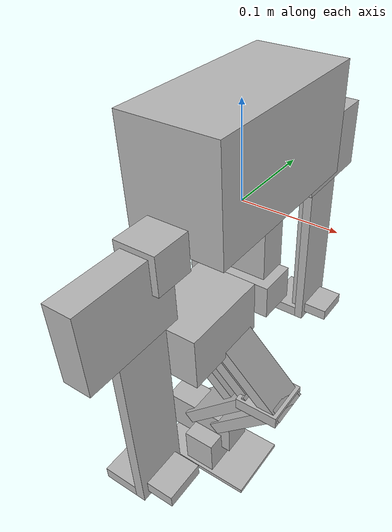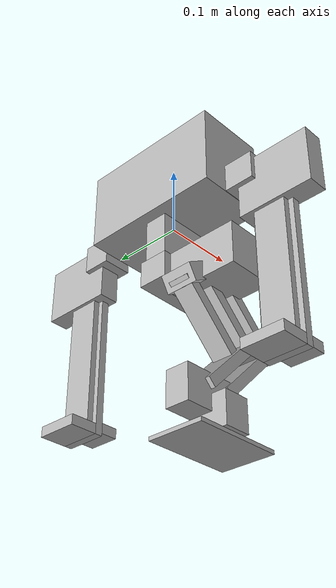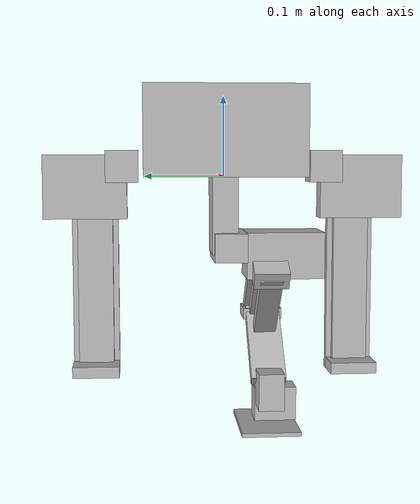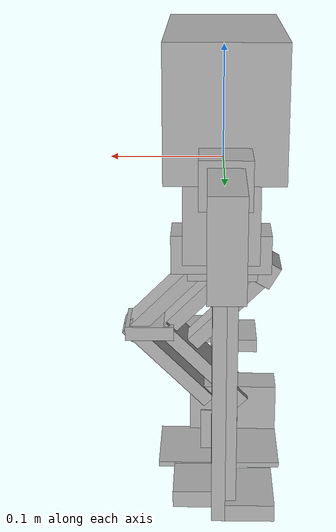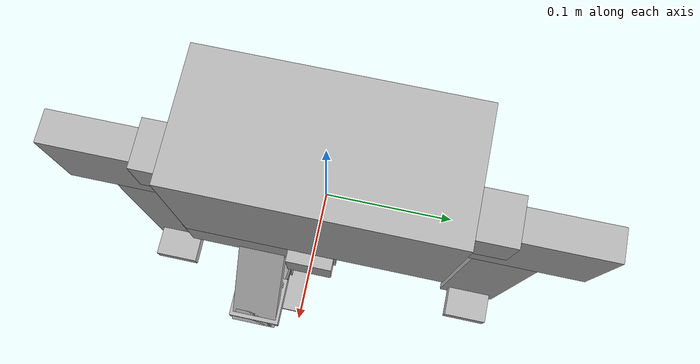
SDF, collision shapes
<sdf version='1.7'>
  <model name='kuroko'>
    <link name='root_link'>
      <inertial>
        <pose>0 0 0.057 0 -0 0</pose>
        <mass>0.991</mass>
        <inertia>
          <ixx>0.00451004</ixx>
          <ixy>0</ixy>
          <ixz>0</ixz>
          <iyy>0.00189909</iyy>
          <iyz>0</iyz>
          <izz>0.00426262</izz>
        </inertia>
      </inertial>
      <collision name='root_link_fixed_joint_lump__chest_collision'>
        <pose>0 0 0.057 0 -0 0</pose>
        <geometry>
          <box>
            <size>0.1 0.204 0.114</size>
          </box>
        </geometry>
        <surface>
          <contact>
            <ode>
              <kp>1e+06</kp>
              <kd>100</kd>
              <max_vel>10</max_vel>
              <min_depth>0.0001</min_depth>
            </ode>
          </contact>
          <friction>
            <ode>
              <mu>0.1</mu>
            </ode>
          </friction>
        </surface>
        <max_contacts>6</max_contacts>
      </collision>
      <visual name='root_link_fixed_joint_lump__chest_visual'>
        <pose>0 0 0 0 -0 0</pose>
        <geometry>
          <mesh>
            <scale>1 1 1</scale>
            <uri>model://kuroko_description/meshes/kuroko/obj/chest.obj</uri>
          </mesh>
        </geometry>
      </visual>
      <velocity_decay>
        <linear>0</linear>
        <angular>0</angular>
      </velocity_decay>
      <self_collide>0</self_collide>
    </link>
    <joint name='shoulder_l_joint' type='revolute'>
      <pose relative_to='root_link'>0 0.108 0.01275 0 -0 0</pose>
      <parent>root_link</parent>
      <child>shoulder_l</child>
      <axis>
        <xyz>0 1 0</xyz>
        <limit>
          <lower>-3.1</lower>
          <upper>3.1</upper>
          <effort>1000</effort>
          <velocity>10</velocity>
        </limit>
        <dynamics>
          <damping>0</damping>
          <friction>0</friction>
          <spring_reference>0</spring_reference>
          <spring_stiffness>0</spring_stiffness>
        </dynamics>
      </axis>
      <physics>
        <ode>
          <implicit_spring_damper>1</implicit_spring_damper>
          <cfm_damping>1</cfm_damping>
          <limit>
            <cfm>0</cfm>
            <erp>0.2</erp>
          </limit>
        </ode>
      </physics>
    </joint>
    <link name='shoulder_l'>
      <pose relative_to='shoulder_l_joint'>0 0 0 0 -0 0</pose>
      <inertial>
        <pose>0 0.0205 0 0 -0 0</pose>
        <mass>0.022</mass>
        <inertia>
          <ixx>1e-05</ixx>
          <ixy>0</ixy>
          <ixz>0</ixz>
          <iyy>1e-05</iyy>
          <iyz>0</iyz>
          <izz>1e-05</izz>
        </inertia>
      </inertial>
      <collision name='shoulder_l_collision'>
        <pose>0 0.0205 0 0 -0 0</pose>
        <geometry>
          <box>
            <size>0.042 0.041 0.04</size>
          </box>
        </geometry>
        <surface>
          <contact>
            <ode>
              <kp>1e+06</kp>
              <kd>100</kd>
              <max_vel>10</max_vel>
              <min_depth>0.0001</min_depth>
            </ode>
          </contact>
          <friction>
            <ode>
              <mu>0</mu>
            </ode>
          </friction>
        </surface>
        <max_contacts>6</max_contacts>
      </collision>
      <visual name='shoulder_l_visual'>
        <pose>0 0 0 0 -0 0</pose>
        <geometry>
          <mesh>
            <scale>1 1 1</scale>
            <uri>model://kuroko_description/meshes/kuroko/obj/shoulder_l.obj</uri>
          </mesh>
        </geometry>
      </visual>
      <velocity_decay>
        <linear>0</linear>
        <angular>0</angular>
      </velocity_decay>
      <self_collide>0</self_collide>
    </link>
    <joint name='arm_l_joint' type='revolute'>
      <pose relative_to='shoulder_l'>0 0.028 0 0 -0 0</pose>
      <parent>shoulder_l</parent>
      <child>arm_l</child>
      <axis>
        <xyz>-1 0 0</xyz>
        <limit>
          <lower>-3.1</lower>
          <upper>3.1</upper>
          <effort>1000</effort>
          <velocity>10</velocity>
        </limit>
        <dynamics>
          <damping>0</damping>
          <friction>0</friction>
          <spring_reference>0</spring_reference>
          <spring_stiffness>0</spring_stiffness>
        </dynamics>
      </axis>
    </joint>
    <link name='arm_l'>
      <pose relative_to='arm_l_joint'>0 0 0 0 -0 0</pose>
      <inertial>
        <pose>0 0.0385 -0.02575 0 -0 0</pose>
        <mass>0.342</mass>
        <inertia>
          <ixx>0.000493627</ixx>
          <ixy>0</ixy>
          <ixz>0</ixz>
          <iyy>0.000205549</iyy>
          <iyz>0</iyz>
          <izz>0.000334376</izz>
        </inertia>
      </inertial>
      <collision name='arm_l_collision'>
        <pose>0 0.0385 -0.02575 0 -0 0</pose>
        <geometry>
          <box>
            <size>0.0285 0.1045 0.08</size>
          </box>
        </geometry>
      </collision>
      <visual name='arm_l_visual'>
        <pose>0 0 0 0 -0 0</pose>
        <geometry>
          <mesh>
            <scale>1 1 1</scale>
            <uri>model://kuroko_description/meshes/kuroko/obj/arm_l.obj</uri>
          </mesh>
        </geometry>
      </visual>
    </link>
    <joint name='scissor_lf_joint' type='revolute'>
      <pose relative_to='arm_l'>0 0.0265 -0.0545 0 -0 0</pose>
      <parent>arm_l</parent>
      <child>scissor_lf</child>
      <axis>
        <xyz>0 1 0</xyz>
        <limit>
          <lower>-3.1</lower>
          <upper>3.1</upper>
          <effort>1000</effort>
          <velocity>10</velocity>
        </limit>
        <dynamics>
          <damping>0</damping>
          <friction>0</friction>
          <spring_reference>0</spring_reference>
          <spring_stiffness>0</spring_stiffness>
        </dynamics>
      </axis>
    </joint>
    <link name='scissor_lf'>
      <pose relative_to='scissor_lf_joint'>0 0 0 0 -0 0</pose>
      <inertial>
        <pose>0.0043 0 -0.104 0 -0 0</pose>
        <mass>0.032</mass>
        <inertia>
          <ixx>0.000124341</ixx>
          <ixy>0</ixy>
          <ixz>0</ixz>
          <iyy>0.000120533</iyy>
          <iyz>0</iyz>
          <izz>1.41333e-05</izz>
        </inertia>
      </inertial>
      <collision name='scissor_lf_collision'>
        <pose>0.0043 0 -0.104 0 -0 0</pose>
        <geometry>
          <box>
            <size>0.01085 0.058 0.208</size>
          </box>
        </geometry>
      </collision>
      <collision name='scissor_lf_collision_1'>
        <pose>-0.0206 0 -0.201 0 -0 0</pose>
        <geometry>
          <box>
            <size>0.039 0.058 0.014</size>
          </box>
        </geometry>
      </collision>
      <visual name='scissor_lf_visual'>
        <pose>0 0 0 0 -0 0</pose>
        <geometry>
          <mesh>
            <scale>1 1 1</scale>
            <uri>model://kuroko_description/meshes/kuroko/obj/scissor_lf.obj</uri>
          </mesh>
        </geometry>
      </visual>
    </link>
    <joint name='scissor_lr_joint' type='revolute'>
      <pose relative_to='arm_l'>0 0.0265 -0.0545 0 -0 0</pose>
      <parent>arm_l</parent>
      <child>scissor_lr</child>
      <axis>
        <xyz>0 -1 0</xyz>
        <limit>
          <lower>-3.1</lower>
          <upper>3.1</upper>
          <effort>1000</effort>
          <velocity>10</velocity>
        </limit>
        <dynamics>
          <damping>0</damping>
          <friction>0</friction>
          <spring_reference>0</spring_reference>
          <spring_stiffness>0</spring_stiffness>
        </dynamics>
      </axis>
    </joint>
    <link name='scissor_lr'>
      <pose relative_to='scissor_lr_joint'>0 0 0 0 -0 0</pose>
      <inertial>
        <pose>-0.0043 0 -0.1 0 -0 0</pose>
        <mass>0.031</mass>
        <inertia>
          <ixx>0.000108335</ixx>
          <ixy>0</ixy>
          <ixz>0</ixz>
          <iyy>0.000108335</iyy>
          <iyz>0</iyz>
          <izz>1.00027e-05</izz>
        </inertia>
      </inertial>
      <collision name='scissor_lr_collision'>
        <pose>-0.0043 0 -0.1 0 -0 0</pose>
        <geometry>
          <box>
            <size>0.01085 0.044 0.2</size>
          </box>
        </geometry>
      </collision>
      <collision name='scissor_lr_collision_1'>
        <pose>0.0206 0 -0.193 0 -0 0</pose>
        <geometry>
          <box>
            <size>0.039 0.044 0.014</size>
          </box>
        </geometry>
      </collision>
      <visual name='scissor_lr_visual'>
        <pose>0 0 0 0 -0 0</pose>
        <geometry>
          <mesh>
            <scale>1 1 1</scale>
            <uri>model://kuroko_description/meshes/kuroko/obj/scissor_lr.obj</uri>
          </mesh>
        </geometry>
      </visual>
    </link>
    <joint name='shoulder_r_joint' type='revolute'>
      <pose relative_to='root_link'>0 -0.108 0.01275 0 -0 0</pose>
      <parent>root_link</parent>
      <child>shoulder_r</child>
      <axis>
        <xyz>0 -1 0</xyz>
        <limit>
          <lower>-3.1</lower>
          <upper>3.1</upper>
          <effort>1000</effort>
          <velocity>10</velocity>
        </limit>
        <dynamics>
          <damping>0</damping>
          <friction>0</friction>
          <spring_reference>0</spring_reference>
          <spring_stiffness>0</spring_stiffness>
        </dynamics>
      </axis>
      <physics>
        <ode>
          <implicit_spring_damper>1</implicit_spring_damper>
          <cfm_damping>1</cfm_damping>
          <limit>
            <cfm>0</cfm>
            <erp>0.2</erp>
          </limit>
        </ode>
      </physics>
    </joint>
    <link name='shoulder_r'>
      <pose relative_to='shoulder_r_joint'>0 0 0 0 -0 0</pose>
      <inertial>
        <pose>0 -0.0205 0 0 -0 0</pose>
        <mass>0.022</mass>
        <inertia>
          <ixx>1e-05</ixx>
          <ixy>0</ixy>
          <ixz>0</ixz>
          <iyy>1e-05</iyy>
          <iyz>0</iyz>
          <izz>1e-05</izz>
        </inertia>
      </inertial>
      <collision name='shoulder_r_collision'>
        <pose>0 -0.0205 0 0 -0 0</pose>
        <geometry>
          <box>
            <size>0.042 0.041 0.04</size>
          </box>
        </geometry>
        <surface>
          <contact>
            <ode>
              <kp>1e+06</kp>
              <kd>100</kd>
              <max_vel>10</max_vel>
              <min_depth>0.0001</min_depth>
            </ode>
          </contact>
          <friction>
            <ode>
              <mu>0</mu>
            </ode>
          </friction>
        </surface>
        <max_contacts>6</max_contacts>
      </collision>
      <visual name='shoulder_r_visual'>
        <pose>0 0 0 0 -0 0</pose>
        <geometry>
          <mesh>
            <scale>1 1 1</scale>
            <uri>model://kuroko_description/meshes/kuroko/obj/shoulder_r.obj</uri>
          </mesh>
        </geometry>
      </visual>
      <velocity_decay>
        <linear>0</linear>
        <angular>0</angular>
      </velocity_decay>
      <self_collide>0</self_collide>
    </link>
    <joint name='arm_r_joint' type='revolute'>
      <pose relative_to='shoulder_r'>0 -0.028 0 0 -0 0</pose>
      <parent>shoulder_r</parent>
      <child>arm_r</child>
      <axis>
        <xyz>-1 0 0</xyz>
        <limit>
          <lower>-3.1</lower>
          <upper>3.1</upper>
          <effort>1000</effort>
          <velocity>10</velocity>
        </limit>
        <dynamics>
          <damping>0</damping>
          <friction>0</friction>
          <spring_reference>0</spring_reference>
          <spring_stiffness>0</spring_stiffness>
        </dynamics>
      </axis>
    </joint>
    <link name='arm_r'>
      <pose relative_to='arm_r_joint'>0 0 0 0 -0 0</pose>
      <inertial>
        <pose>0 -0.0385 -0.02575 0 -0 0</pose>
        <mass>0.342</mass>
        <inertia>
          <ixx>0.000493627</ixx>
          <ixy>0</ixy>
          <ixz>0</ixz>
          <iyy>0.000205549</iyy>
          <iyz>0</iyz>
          <izz>0.000334376</izz>
        </inertia>
      </inertial>
      <collision name='arm_r_collision'>
        <pose>0 -0.0385 -0.02575 0 -0 0</pose>
        <geometry>
          <box>
            <size>0.0285 0.1045 0.08</size>
          </box>
        </geometry>
      </collision>
      <visual name='arm_r_visual'>
        <pose>0 0 0 0 -0 0</pose>
        <geometry>
          <mesh>
            <scale>1 1 1</scale>
            <uri>model://kuroko_description/meshes/kuroko/obj/arm_r.obj</uri>
          </mesh>
        </geometry>
      </visual>
    </link>
    <joint name='scissor_rf_joint' type='revolute'>
      <pose relative_to='arm_r'>0 -0.0265 -0.0545 0 -0 0</pose>
      <parent>arm_r</parent>
      <child>scissor_rf</child>
      <axis>
        <xyz>0 -1 0</xyz>
        <limit>
          <lower>-3.1</lower>
          <upper>3.1</upper>
          <effort>1000</effort>
          <velocity>10</velocity>
        </limit>
        <dynamics>
          <damping>0</damping>
          <friction>0</friction>
          <spring_reference>0</spring_reference>
          <spring_stiffness>0</spring_stiffness>
        </dynamics>
      </axis>
    </joint>
    <link name='scissor_rf'>
      <pose relative_to='scissor_rf_joint'>0 0 0 0 -0 0</pose>
      <inertial>
        <pose>0.0043 0 -0.104 0 -0 0</pose>
        <mass>0.032</mass>
        <inertia>
          <ixx>0.000124341</ixx>
          <ixy>0</ixy>
          <ixz>0</ixz>
          <iyy>0.000120533</iyy>
          <iyz>0</iyz>
          <izz>1.41333e-05</izz>
        </inertia>
      </inertial>
      <collision name='scissor_rf_collision'>
        <pose>0.0043 0 -0.104 0 -0 0</pose>
        <geometry>
          <box>
            <size>0.01085 0.058 0.208</size>
          </box>
        </geometry>
      </collision>
      <collision name='scissor_rf_collision_1'>
        <pose>-0.0206 0 -0.201 0 -0 0</pose>
        <geometry>
          <box>
            <size>0.039 0.058 0.014</size>
          </box>
        </geometry>
      </collision>
      <visual name='scissor_rf_visual'>
        <pose>0 0 0 0 -0 0</pose>
        <geometry>
          <mesh>
            <scale>1 1 1</scale>
            <uri>model://kuroko_description/meshes/kuroko/obj/scissor_rf.obj</uri>
          </mesh>
        </geometry>
      </visual>
    </link>
    <joint name='scissor_rr_joint' type='revolute'>
      <pose relative_to='arm_r'>0 -0.0265 -0.0545 0 -0 0</pose>
      <parent>arm_r</parent>
      <child>scissor_rr</child>
      <axis>
        <xyz>0 1 0</xyz>
        <limit>
          <lower>-3.1</lower>
          <upper>3.1</upper>
          <effort>1000</effort>
          <velocity>10</velocity>
        </limit>
        <dynamics>
          <damping>0</damping>
          <friction>0</friction>
          <spring_reference>0</spring_reference>
          <spring_stiffness>0</spring_stiffness>
        </dynamics>
      </axis>
    </joint>
    <link name='scissor_rr'>
      <pose relative_to='scissor_rr_joint'>0 0 0 0 -0 0</pose>
      <inertial>
        <pose>-0.0043 0 -0.1 0 -0 0</pose>
        <mass>0.031</mass>
        <inertia>
          <ixx>0.000108335</ixx>
          <ixy>0</ixy>
          <ixz>0</ixz>
          <iyy>0.000108335</iyy>
          <iyz>0</iyz>
          <izz>1.00027e-05</izz>
        </inertia>
      </inertial>
      <collision name='scissor_rr_collision'>
        <pose>-0.0043 0 -0.1 0 -0 0</pose>
        <geometry>
          <box>
            <size>0.01085 0.044 0.2</size>
          </box>
        </geometry>
      </collision>
      <collision name='scissor_rr_collision_1'>
        <pose>0.0206 0 -0.193 0 -0 0</pose>
        <geometry>
          <box>
            <size>0.039 0.044 0.014</size>
          </box>
        </geometry>
      </collision>
      <visual name='scissor_rr_visual'>
        <pose>0 0 0 0 -0 0</pose>
        <geometry>
          <mesh>
            <scale>1 1 1</scale>
            <uri>model://kuroko_description/meshes/kuroko/obj/scissor_rr.obj</uri>
          </mesh>
        </geometry>
      </visual>
    </link>
    <joint name='waist_joint' type='revolute'>
      <pose relative_to='root_link'>0 0 0 0 -0 0</pose>
      <parent>root_link</parent>
      <child>waist</child>
      <axis>
        <xyz>0 0 -1</xyz>
        <limit>
          <lower>-3.1</lower>
          <upper>3.1</upper>
          <effort>1000</effort>
          <velocity>10</velocity>
        </limit>
        <dynamics>
          <damping>0</damping>
          <friction>0</friction>
          <spring_reference>0</spring_reference>
          <spring_stiffness>0</spring_stiffness>
        </dynamics>
      </axis>
      <physics>
        <ode>
          <implicit_spring_damper>1</implicit_spring_damper>
          <cfm_damping>1</cfm_damping>
          <limit>
            <cfm>0</cfm>
            <erp>0.2</erp>
          </limit>
        </ode>
      </physics>
    </joint>
    <link name='waist'>
      <pose relative_to='waist_joint'>0 0 0 0 -0 0</pose>
      <inertial>
        <pose>0.00125 0 -0.04875 0 -0 0</pose>
        <mass>0.337</mass>
        <inertia>
          <ixx>0.00029663</ixx>
          <ixy>0</ixy>
          <ixz>0</ixz>
          <iyy>0.000406548</iyy>
          <iyz>0</iyz>
          <izz>0.000169244</izz>
        </inertia>
      </inertial>
      <collision name='waist_collision'>
        <pose>0.00125 0 -0.04875 0 -0 0</pose>
        <geometry>
          <box>
            <size>0.0705 0.0325 0.0975</size>
          </box>
        </geometry>
        <surface>
          <contact>
            <ode>
              <kp>1e+06</kp>
              <kd>100</kd>
              <max_vel>10</max_vel>
              <min_depth>0.0001</min_depth>
            </ode>
          </contact>
          <friction>
            <ode>
              <mu>0.1</mu>
            </ode>
          </friction>
        </surface>
        <max_contacts>6</max_contacts>
      </collision>
      <visual name='waist_visual'>
        <pose>0 0 0 0 -0 0</pose>
        <geometry>
          <mesh>
            <scale>1 1 1</scale>
            <uri>model://kuroko_description/meshes/kuroko/obj/waist.obj</uri>
          </mesh>
        </geometry>
      </visual>
      <velocity_decay>
        <linear>0</linear>
        <angular>0</angular>
      </velocity_decay>
      <self_collide>0</self_collide>
    </link>
    <joint name='crotch_r_joint' type='revolute'>
      <pose relative_to='waist'>0.00125 0 -0.08425 0 -0 0</pose>
      <parent>waist</parent>
      <child>crotch_r</child>
      <axis>
        <xyz>1 0 0</xyz>
        <limit>
          <lower>-3.1</lower>
          <upper>3.1</upper>
          <effort>1000</effort>
          <velocity>10</velocity>
        </limit>
        <dynamics>
          <damping>0</damping>
          <friction>0</friction>
          <spring_reference>0</spring_reference>
          <spring_stiffness>0</spring_stiffness>
        </dynamics>
      </axis>
    </joint>
    <link name='crotch_r'>
      <pose relative_to='crotch_r_joint'>0 0 0 0 -0 0</pose>
      <inertial>
        <pose>0 -0.0065 -0.004125 0 -0 0</pose>
        <mass>0.026</mass>
        <inertia>
          <ixx>1e-05</ixx>
          <ixy>0</ixy>
          <ixz>0</ixz>
          <iyy>2.11858e-05</iyy>
          <iyz>0</iyz>
          <izz>2.19808e-05</izz>
        </inertia>
      </inertial>
      <collision name='crotch_r_collision'>
        <pose>0 -0.0065 -0.004125 0 -0 0</pose>
        <geometry>
          <box>
            <size>0.092 0.041 0.03625</size>
          </box>
        </geometry>
      </collision>
      <visual name='crotch_r_visual'>
        <pose>0 0 0 0 -0 0</pose>
        <geometry>
          <mesh>
            <scale>1 1 1</scale>
            <uri>model://kuroko_description/meshes/kuroko/obj/crotch_r.obj</uri>
          </mesh>
        </geometry>
      </visual>
    </link>
    <joint name='thigh_r_01_joint' type='revolute'>
      <pose relative_to='crotch_r'>0 -0.027 0 0 -0 0</pose>
      <parent>crotch_r</parent>
      <child>thigh_r_01</child>
      <axis>
        <xyz>0 -1 0</xyz>
        <limit>
          <lower>-3.1</lower>
          <upper>3.1</upper>
          <effort>1000</effort>
          <velocity>10</velocity>
        </limit>
        <dynamics>
          <damping>0</damping>
          <friction>0</friction>
          <spring_reference>0</spring_reference>
          <spring_stiffness>0</spring_stiffness>
        </dynamics>
      </axis>
    </joint>
    <link name='thigh_r_01'>
      <pose relative_to='thigh_r_01_joint'>0 0 0 0 -0 0</pose>
      <inertial>
        <pose>-0.00175 -0.049 -0.015 0 -0 0</pose>
        <mass>0.478</mass>
        <inertia>
          <ixx>0.000518879</ixx>
          <ixy>0</ixy>
          <ixz>0</ixz>
          <iyy>0.000315131</iyy>
          <iyz>0</iyz>
          <izz>0.000561371</izz>
        </inertia>
      </inertial>
      <collision name='thigh_r_01_collision'>
        <pose>-0.00175 -0.049 -0.015 0 -0 0</pose>
        <geometry>
          <box>
            <size>0.067 0.098 0.0585</size>
          </box>
        </geometry>
      </collision>
      <visual name='thigh_r_01_visual'>
        <pose>0 0 0 0 -0 0</pose>
        <geometry>
          <mesh>
            <scale>1 1 1</scale>
            <uri>model://kuroko_description/meshes/kuroko/obj/thigh_r_01.obj</uri>
          </mesh>
        </geometry>
      </visual>
    </link>
    <joint name='thigh_r_02_joint' type='revolute'>
      <pose relative_to='thigh_r_01'>0.015 -0.02925 -0.0305 0 -0.785398 0</pose>
      <parent>thigh_r_01</parent>
      <child>thigh_r_02</child>
      <axis>
        <xyz>0 1 0</xyz>
        <limit>
          <lower>-3.1</lower>
          <upper>3.1</upper>
          <effort>1000</effort>
          <velocity>10</velocity>
        </limit>
        <dynamics>
          <damping>0</damping>
          <friction>0</friction>
          <spring_reference>0</spring_reference>
          <spring_stiffness>0</spring_stiffness>
        </dynamics>
      </axis>
    </joint>
    <link name='thigh_r_02'>
      <pose relative_to='thigh_r_02_joint'>0 0 0 0 -0 0</pose>
      <inertial>
        <pose>0 0 -0.05 0 -0 0</pose>
        <mass>0.012</mass>
        <inertia>
          <ixx>1.49763e-05</ixx>
          <ixy>0</ixy>
          <ixz>0</ixz>
          <iyy>1.3192e-05</iyy>
          <iyz>0</iyz>
          <izz>1e-05</izz>
        </inertia>
      </inertial>
      <collision name='thigh_r_02_collision'>
        <pose>0 0 -0.05 0 -0 0</pose>
        <geometry>
          <box>
            <size>0.014 0.0445 0.114</size>
          </box>
        </geometry>
      </collision>
      <visual name='thigh_r_02_visual'>
        <pose>0 0 0 0 -0 0</pose>
        <geometry>
          <mesh>
            <scale>1 1 1</scale>
            <uri>model://kuroko_description/meshes/kuroko/obj/thigh_r_02.obj</uri>
          </mesh>
        </geometry>
      </visual>
    </link>
    <joint name='knee_r_joint' type='revolute'>
      <pose relative_to='thigh_r_02'>0 0 -0.1 0 0.785398 0</pose>
      <parent>thigh_r_02</parent>
      <child>knee_r</child>
      <axis>
        <xyz>0 1 0</xyz>
        <limit>
          <lower>-3.1</lower>
          <upper>3.1</upper>
          <effort>1000</effort>
          <velocity>10</velocity>
        </limit>
        <dynamics>
          <damping>0</damping>
          <friction>0</friction>
          <spring_reference>0</spring_reference>
          <spring_stiffness>0</spring_stiffness>
        </dynamics>
      </axis>
    </joint>
    <link name='knee_r'>
      <pose relative_to='knee_r_joint'>0 0 0 0 -0 0</pose>
      <inertial>
        <pose>-0.01675 0 0 0 -0 0</pose>
        <mass>0.007</mass>
        <inertia>
          <ixx>1e-05</ixx>
          <ixy>0</ixy>
          <ixz>0</ixz>
          <iyy>1e-05</iyy>
          <iyz>0</iyz>
          <izz>1e-05</izz>
        </inertia>
      </inertial>
      <collision name='knee_r_collision'>
        <pose>-0.01675 0 0 0 -0 0</pose>
        <geometry>
          <box>
            <size>0.0475 0.0505 0.014</size>
          </box>
        </geometry>
      </collision>
      <visual name='knee_r_visual'>
        <pose>0 0 0 0 -0 0</pose>
        <geometry>
          <mesh>
            <scale>1 1 1</scale>
            <uri>model://kuroko_description/meshes/kuroko/obj/knee_r.obj</uri>
          </mesh>
        </geometry>
      </visual>
    </link>
    <joint name='leg_r_01_joint' type='revolute'>
      <pose relative_to='knee_r'>0 0 0 0 0.785398 0</pose>
      <parent>knee_r</parent>
      <child>leg_r_01</child>
      <axis>
        <xyz>0 1 0</xyz>
        <limit>
          <lower>-3.1</lower>
          <upper>3.1</upper>
          <effort>1000</effort>
          <velocity>10</velocity>
        </limit>
        <dynamics>
          <damping>0</damping>
          <friction>0</friction>
          <spring_reference>0</spring_reference>
          <spring_stiffness>0</spring_stiffness>
        </dynamics>
      </axis>
    </joint>
    <link name='leg_r_01'>
      <pose relative_to='leg_r_01_joint'>0 0 0 0 -0 0</pose>
      <inertial>
        <pose>0 0 -0.05 0 -0 0</pose>
        <mass>0.013</mass>
        <inertia>
          <ixx>1.56848e-05</ixx>
          <ixy>0</ixy>
          <ixz>0</ixz>
          <iyy>1.42913e-05</iyy>
          <iyz>0</iyz>
          <izz>1e-05</izz>
        </inertia>
      </inertial>
      <collision name='leg_r_01_collision'>
        <pose>0 0 -0.05 0 -0 0</pose>
        <geometry>
          <box>
            <size>0.014 0.0385 0.114</size>
          </box>
        </geometry>
      </collision>
      <visual name='leg_r_01_visual'>
        <pose>0 0 0 0 -0 0</pose>
        <geometry>
          <mesh>
            <scale>1 1 1</scale>
            <uri>model://kuroko_description/meshes/kuroko/obj/leg_r_01.obj</uri>
          </mesh>
        </geometry>
      </visual>
    </link>
    <joint name='ankle_r_01_joint' type='revolute'>
      <pose relative_to='leg_r_01'>0 0 -0.1 0 -0.785398 0</pose>
      <parent>leg_r_01</parent>
      <child>ankle_r_01</child>
      <axis>
        <xyz>0 1 0</xyz>
        <limit>
          <lower>-3.1</lower>
          <upper>3.1</upper>
          <effort>1000</effort>
          <velocity>10</velocity>
        </limit>
        <dynamics>
          <damping>0</damping>
          <friction>0</friction>
          <spring_reference>0</spring_reference>
          <spring_stiffness>0</spring_stiffness>
        </dynamics>
      </axis>
    </joint>
    <link name='ankle_r_01'>
      <pose relative_to='ankle_r_01_joint'>0 0 0 0 -0 0</pose>
      <inertial>
        <pose>-0.0285 0 -0.013 0 -0 0</pose>
        <mass>0.104</mass>
        <inertia>
          <ixx>2.78937e-05</ixx>
          <ixy>0</ixy>
          <ixz>0</ixz>
          <iyy>8.2095e-05</iyy>
          <iyz>0</iyz>
          <izz>7.25097e-05</izz>
        </inertia>
      </inertial>
      <collision name='ankle_r_01_collision'>
        <pose>-0.0285 0 -0.013 0 -0 0</pose>
        <geometry>
          <box>
            <size>0.0855 0.0325 0.0465</size>
          </box>
        </geometry>
      </collision>
      <visual name='ankle_r_01_visual'>
        <pose>0 0 0 0 -0 0</pose>
        <geometry>
          <mesh>
            <scale>1 1 1</scale>
            <uri>model://kuroko_description/meshes/kuroko/obj/ankle_r_01.obj</uri>
          </mesh>
        </geometry>
      </visual>
    </link>
    <joint name='toe_r_01_joint' type='revolute'>
      <pose relative_to='ankle_r_01'>-0.015 0 -0.025 0 -0 0</pose>
      <parent>ankle_r_01</parent>
      <child>toe_r_01</child>
      <axis>
        <xyz>1 0 0</xyz>
        <limit>
          <lower>-3.1</lower>
          <upper>3.1</upper>
          <effort>1000</effort>
          <velocity>10</velocity>
        </limit>
        <dynamics>
          <damping>0</damping>
          <friction>0</friction>
          <spring_reference>0</spring_reference>
          <spring_stiffness>0</spring_stiffness>
        </dynamics>
      </axis>
    </joint>
    <link name='toe_r_01'>
      <pose relative_to='toe_r_01_joint'>0 0 0 0 -0 0</pose>
      <inertial>
        <pose>0 -0.009375 -0.01175 0 -0 0</pose>
        <mass>0.136</mass>
        <inertia>
          <ixx>5.3698e-05</ixx>
          <ixy>0</ixy>
          <ixz>0</ixz>
          <iyy>3.60542e-05</iyy>
          <iyz>0</iyz>
          <izz>4.78415e-05</izz>
        </inertia>
      </inertial>
      <collision name='toe_r_01_collision'>
        <pose>0 -0.009375 -0.01175 0 -0 0</pose>
        <geometry>
          <box>
            <size>0.0365 0.05375 0.043</size>
          </box>
        </geometry>
      </collision>
      <visual name='toe_r_01_visual'>
        <pose>0 0 0 0 -0 0</pose>
        <geometry>
          <mesh>
            <scale>1 1 1</scale>
            <uri>model://kuroko_description/meshes/kuroko/obj/toe_r_01.obj</uri>
          </mesh>
        </geometry>
      </visual>
    </link>
    <joint name='toe_r_02_joint' type='revolute'>
      <pose relative_to='toe_r_01'>0 0 -0.03825 0 -0 0</pose>
      <parent>toe_r_01</parent>
      <child>toe_r_02</child>
      <axis>
        <xyz>0 0 -1</xyz>
        <limit>
          <lower>-3.1</lower>
          <upper>3.1</upper>
          <effort>1000</effort>
          <velocity>10</velocity>
        </limit>
        <dynamics>
          <damping>0</damping>
          <friction>0</friction>
          <spring_reference>0</spring_reference>
          <spring_stiffness>0</spring_stiffness>
        </dynamics>
      </axis>
    </joint>
    <link name='toe_r_02'>
      <pose relative_to='toe_r_02_joint'>0 0 0 0 -0 0</pose>
      <inertial>
        <pose>0 0 -0.0025 0 -0 0</pose>
        <mass>0.043</mass>
        <inertia>
          <ixx>2.02458e-05</ixx>
          <ixy>0</ixy>
          <ixz>0</ixz>
          <iyy>5.16896e-05</iyy>
          <iyz>0</iyz>
          <izz>7.17562e-05</izz>
        </inertia>
      </inertial>
      <collision name='toe_r_02_collision'>
        <pose>0 0 -0.0025 0 -0 0</pose>
        <geometry>
          <box>
            <size>0.12 0.075 0.005</size>
          </box>
        </geometry>
      </collision>
      <visual name='toe_r_02_visual'>
        <pose>0 0 0 0 -0 0</pose>
        <geometry>
          <mesh>
            <scale>1 1 1</scale>
            <uri>model://kuroko_description/meshes/kuroko/obj/toe_r_02.obj</uri>
          </mesh>
        </geometry>
      </visual>
    </link>
    <joint name='leg_r_02_joint' type='revolute'>
      <pose relative_to='knee_r'>-0.0335 0 0 0 0.785398 0</pose>
      <parent>knee_r</parent>
      <child>leg_r_02</child>
      <axis>
        <xyz>0 1 0</xyz>
        <limit>
          <lower>-3.1</lower>
          <upper>3.1</upper>
          <effort>1000</effort>
          <velocity>10</velocity>
        </limit>
        <dynamics>
          <damping>0</damping>
          <friction>0</friction>
          <spring_reference>0</spring_reference>
          <spring_stiffness>0</spring_stiffness>
        </dynamics>
      </axis>
    </joint>
    <link name='leg_r_02'>
      <pose relative_to='leg_r_02_joint'>0 0 0 0 -0 0</pose>
      <inertial>
        <pose>0 0 -0.05 0 -0 0</pose>
        <mass>0.016</mass>
        <inertia>
          <ixx>1.99683e-05</ixx>
          <ixy>0</ixy>
          <ixz>0</ixz>
          <iyy>1.75893e-05</iyy>
          <iyz>0</iyz>
          <izz>1e-05</izz>
        </inertia>
      </inertial>
      <collision name='leg_r_02_collision'>
        <pose>0 0 -0.05 0 -0 0</pose>
        <geometry>
          <box>
            <size>0.014 0.0445 0.114</size>
          </box>
        </geometry>
      </collision>
      <visual name='leg_r_02_visual'>
        <pose>0 0 0 0 -0 0</pose>
        <geometry>
          <mesh>
            <scale>1 1 1</scale>
            <uri>model://kuroko_description/meshes/kuroko/obj/leg_r_02.obj</uri>
          </mesh>
        </geometry>
      </visual>
    </link>
    <joint name='thigh_r_03_joint' type='revolute'>
      <pose relative_to='thigh_r_01'>-0.0185 -0.02925 -0.0305 0 1.0472 0</pose>
      <parent>thigh_r_01</parent>
      <child>thigh_r_03</child>
      <axis>
        <xyz>0 1 0</xyz>
        <limit>
          <lower>-3.1</lower>
          <upper>3.1</upper>
          <effort>1000</effort>
          <velocity>10</velocity>
        </limit>
        <dynamics>
          <damping>0</damping>
          <friction>0</friction>
          <spring_reference>0</spring_reference>
          <spring_stiffness>0</spring_stiffness>
        </dynamics>
      </axis>
    </joint>
    <link name='thigh_r_03'>
      <pose relative_to='thigh_r_03_joint'>0 0 0 0 -0 0</pose>
      <inertial>
        <pose>-0.004745 0 -0.015 0 -0 0</pose>
        <mass>0.008</mass>
        <inertia>
          <ixx>1e-05</ixx>
          <ixy>0</ixy>
          <ixz>0</ixz>
          <iyy>1e-05</iyy>
          <iyz>0</iyz>
          <izz>1e-05</izz>
        </inertia>
      </inertial>
      <collision name='thigh_r_03_collision'>
        <pose>-0.004745 0 -0.015 0 -0 0</pose>
        <geometry>
          <box>
            <size>0.02349 0.0445 0.044</size>
          </box>
        </geometry>
      </collision>
      <visual name='thigh_r_03_visual'>
        <pose>0 0 0 0 -0 0</pose>
        <geometry>
          <mesh>
            <scale>1 1 1</scale>
            <uri>model://kuroko_description/meshes/kuroko/obj/thigh_r_03.obj</uri>
          </mesh>
        </geometry>
      </visual>
    </link>
    <joint name='thigh_r_05_mimic1' type='revolute'>
      <pose relative_to='thigh_r_03'>0 0 -0.03 3.14159 -1.30899 3.14159</pose>
      <parent>thigh_r_03</parent>
      <child>thigh_r_05</child>
      <axis>
        <xyz>0 1 0</xyz>
        <limit>
          <lower>-3.1</lower>
          <upper>3.1</upper>
          <effort>1000</effort>
          <velocity>10</velocity>
        </limit>
        <dynamics>
          <damping>0</damping>
          <friction>0</friction>
          <spring_reference>0</spring_reference>
          <spring_stiffness>0</spring_stiffness>
        </dynamics>
      </axis>
    </joint>
    <link name='thigh_r_05'>
      <pose relative_to='thigh_r_05_mimic1'>0 0 0 0 -0 0</pose>
      <inertial>
        <pose>0 0 -0.05 0 -0 0</pose>
        <mass>0.011</mass>
        <inertia>
          <ixx>1.26576e-05</ixx>
          <ixy>0</ixy>
          <ixz>0</ixz>
          <iyy>1.20927e-05</iyy>
          <iyz>0</iyz>
          <izz>1e-05</izz>
        </inertia>
      </inertial>
      <collision name='thigh_r_05_collision'>
        <pose>0 0 -0.05 0 -0 0</pose>
        <geometry>
          <box>
            <size>0.014 0.0285 0.114</size>
          </box>
        </geometry>
      </collision>
      <visual name='thigh_r_05_visual'>
        <pose>0 0 0 0 -0 0</pose>
        <geometry>
          <mesh>
            <scale>1 1 1</scale>
            <uri>model://kuroko_description/meshes/kuroko/obj/thigh_r_05.obj</uri>
          </mesh>
        </geometry>
      </visual>
    </link>
    <joint name='thigh_r_04_joint' type='revolute'>
      <pose relative_to='thigh_r_01'>-0.0185 -0.02925 -0.0305 0 -0.785398 0</pose>
      <parent>thigh_r_01</parent>
      <child>thigh_r_04</child>
      <axis>
        <xyz>0 1 0</xyz>
        <limit>
          <lower>-3.1</lower>
          <upper>3.1</upper>
          <effort>1000</effort>
          <velocity>10</velocity>
        </limit>
        <dynamics>
          <damping>0</damping>
          <friction>0</friction>
          <spring_reference>0</spring_reference>
          <spring_stiffness>0</spring_stiffness>
        </dynamics>
      </axis>
    </joint>
    <link name='thigh_r_04'>
      <pose relative_to='thigh_r_04_joint'>0 0 0 0 -0 0</pose>
      <inertial>
        <pose>0 0 -0.05 0 -0 0</pose>
        <mass>0.012</mass>
        <inertia>
          <ixx>1.41862e-05</ixx>
          <ixy>0</ixy>
          <ixz>0</ixz>
          <iyy>1.3192e-05</iyy>
          <iyz>0</iyz>
          <izz>1e-05</izz>
        </inertia>
      </inertial>
      <collision name='thigh_r_04_collision'>
        <pose>0 0 -0.05 0 -0 0</pose>
        <geometry>
          <box>
            <size>0.014 0.0345 0.114</size>
          </box>
        </geometry>
      </collision>
      <visual name='thigh_r_04_visual'>
        <pose>0 0 0 0 -0 0</pose>
        <geometry>
          <mesh>
            <scale>1 1 1</scale>
            <uri>model://kuroko_description/meshes/kuroko/obj/thigh_r_04.obj</uri>
          </mesh>
        </geometry>
      </visual>
    </link>
    <joint name='thigh_r_05_joint' type='revolute'>
      <parent>thigh_r_03</parent>
      <child>thigh_r_05</child>
      <pose>-0.03 0 0 0 -0 0</pose>
      <axis>
        <xyz>0 1 0</xyz>
        <limit>
          <lower>-3.1</lower>
          <upper>3.1</upper>
        </limit>
        <dynamics>
          <spring_reference>0</spring_reference>
          <spring_stiffness>0</spring_stiffness>
        </dynamics>
        <use_parent_model_frame>1</use_parent_model_frame>
      </axis>
      <physics>
        <ode>
          <implicit_spring_damper>1</implicit_spring_damper>
          <cfm_damping>0</cfm_damping>
          <limit>
            <cfm>1e-07</cfm>
            <erp>0.8</erp>
          </limit>
        </ode>
      </physics>
    </joint>
    <plugin name='gazebo_ros_control' filename='libgazebo_dc_motor.so'>
      <robotNamespace>kuroko</robotNamespace>
      <robotSimType>gazebo_dc_motor/DefaultRobotHWSim</robotSimType>
      <legacyModeNS>0</legacyModeNS>
    </plugin>
    <frame name='root_joint' attached_to='root_link'>
      <pose>0 0 0 0 -0 0</pose>
    </frame>
    <frame name='chest' attached_to='root_joint'/>
  </model>
</sdf>
